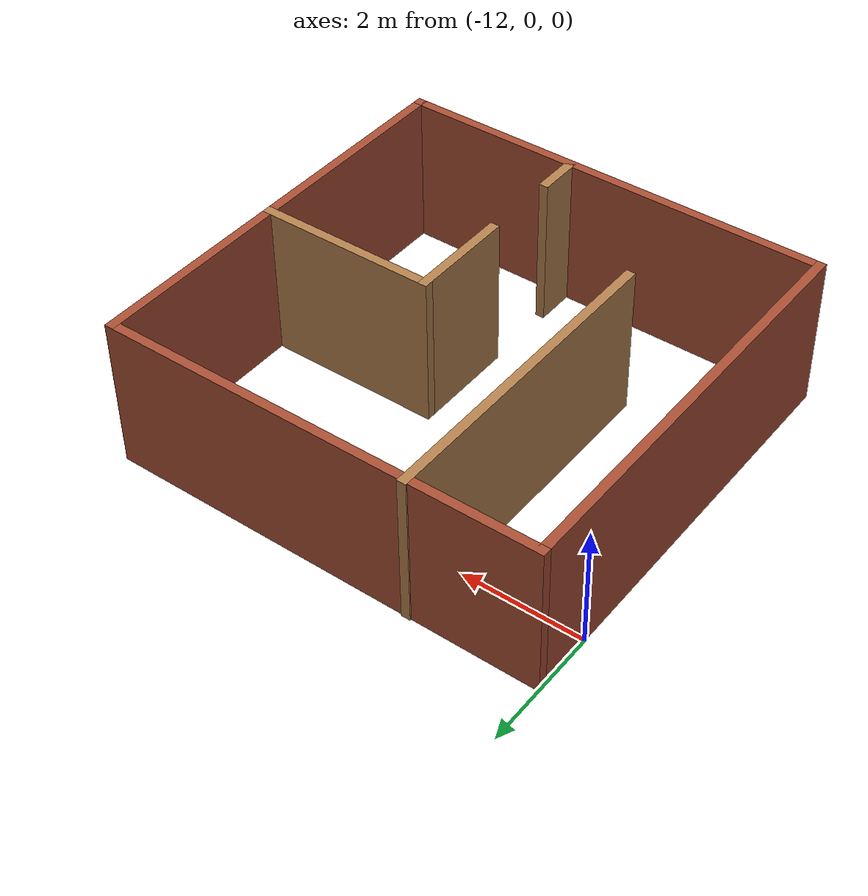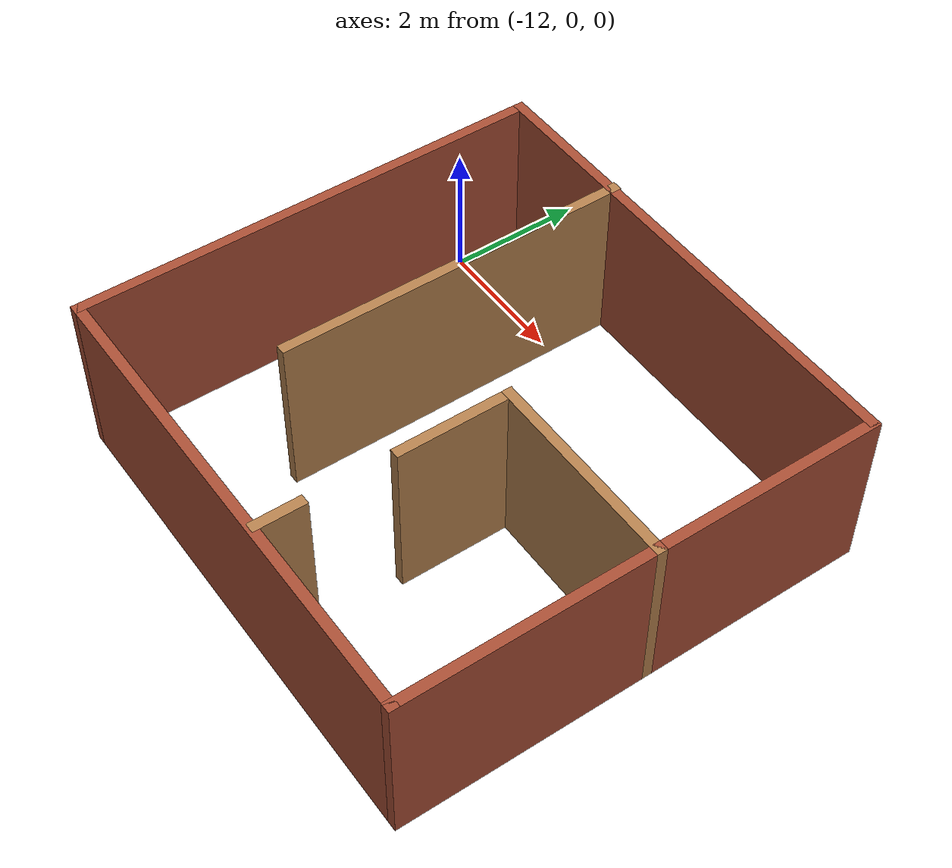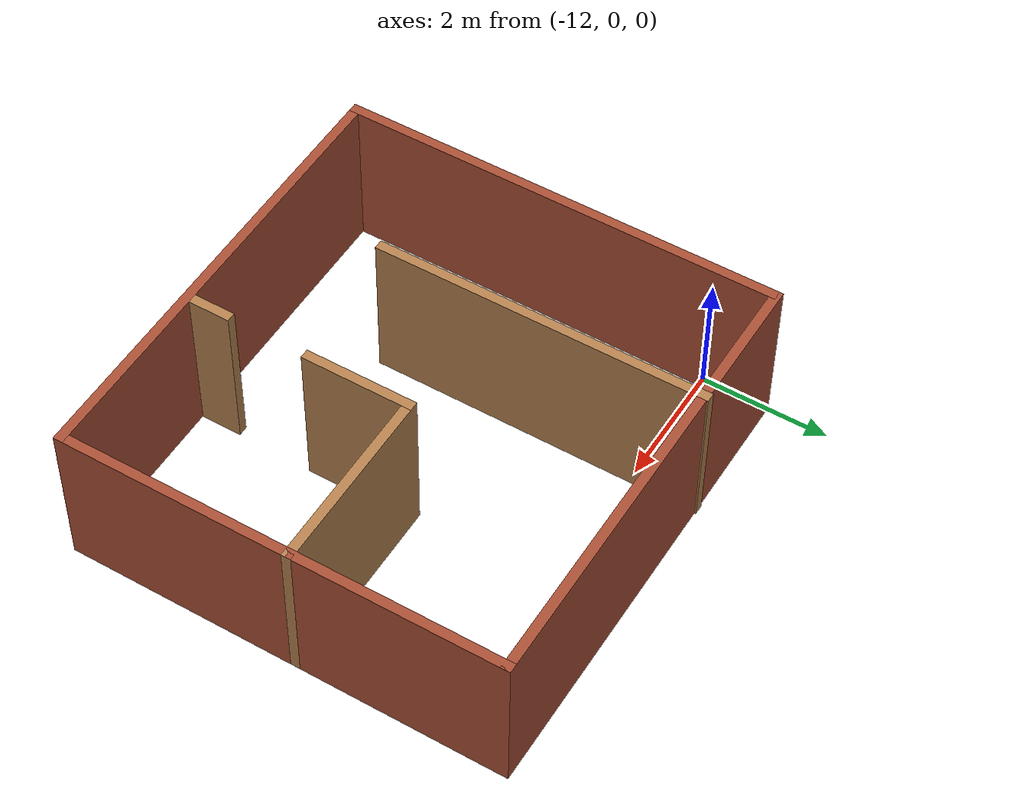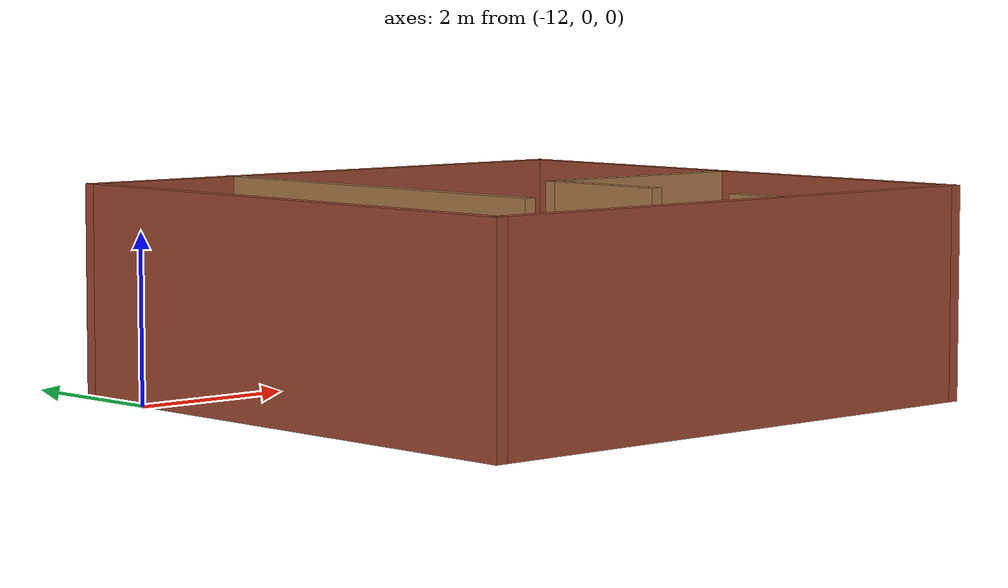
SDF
<?xml version='1.0'?>
<sdf version='1.7'>
  <model name='myBuilding'>
    <pose>-6.0054 -2.43416 0 0 -0 0</pose>
    <link name='Wall_1'>
      <collision name='Wall_1_Collision'>
        <geometry>
          <box>
            <size>7 0.15 2.5</size>
          </box>
        </geometry>
        <pose>0 0 1.25 0 -0 0</pose>
      </collision>
      <visual name='Wall_1_Visual'>
        <pose>0 0 1.25 0 -0 0</pose>
        <geometry>
          <box>
            <size>7 0.15 2.5</size>
          </box>
        </geometry>
        <material>
          <script>
            <uri>file://media/materials/scripts/gazebo.material</uri>
            <name>Gazebo/Bricks</name>
          </script>
          <ambient>1 1 1 1</ambient>
        </material>
        <meta>
          <layer>0</layer>
        </meta>
      </visual>
      <pose>-5.9304 -0.011565 0 0 -0 -1.5708</pose>
    </link>
    <link name='Wall_10'>
      <collision name='Wall_10_Collision'>
        <geometry>
          <box>
            <size>3.4 0.15 2.5</size>
          </box>
        </geometry>
        <pose>0 0 1.25 0 -0 0</pose>
      </collision>
      <visual name='Wall_10_Visual'>
        <pose>0 0 1.25 0 -0 0</pose>
        <geometry>
          <box>
            <size>3.4 0.15 2.5</size>
          </box>
        </geometry>
        <material>
          <script>
            <uri>file://media/materials/scripts/gazebo.material</uri>
            <name>Gazebo/Bricks</name>
          </script>
          <ambient>0.996078 0.47451 0.0196078 1</ambient>
        </material>
        <meta>
          <layer>0</layer>
        </meta>
      </visual>
      <pose>1.1696 1.78843 0 0 -0 -1.5708</pose>
    </link>
    <link name='Wall_12'>
      <collision name='Wall_12_Collision'>
        <geometry>
          <box>
            <size>5.25 0.15 2.5</size>
          </box>
        </geometry>
        <pose>0 0 1.25 0 -0 0</pose>
      </collision>
      <visual name='Wall_12_Visual'>
        <pose>0 0 1.25 0 -0 0</pose>
        <geometry>
          <box>
            <size>5.25 0.15 2.5</size>
          </box>
        </geometry>
        <material>
          <script>
            <uri>file://media/materials/scripts/gazebo.material</uri>
            <name>Gazebo/Wood</name>
          </script>
          <ambient>1 1 1 1</ambient>
        </material>
        <meta>
          <layer>0</layer>
        </meta>
      </visual>
      <pose>-3.87177 0.886565 0 0 -0 -1.5708</pose>
    </link>
    <link name='Wall_2'>
      <collision name='Wall_2_Collision'>
        <geometry>
          <box>
            <size>7.25 0.15 2.5</size>
          </box>
        </geometry>
        <pose>0 0 1.25 0 -0 0</pose>
      </collision>
      <visual name='Wall_2_Visual'>
        <pose>0 0 1.25 0 -0 0</pose>
        <geometry>
          <box>
            <size>7.25 0.15 2.5</size>
          </box>
        </geometry>
        <material>
          <script>
            <uri>file://media/materials/scripts/gazebo.material</uri>
            <name>Gazebo/Bricks</name>
          </script>
          <ambient>1 1 1 1</ambient>
        </material>
        <meta>
          <layer>0</layer>
        </meta>
      </visual>
      <pose>-2.3804 -3.43656 0 0 -0 0</pose>
    </link>
    <link name='Wall_3'>
      <collision name='Wall_3_Collision'>
        <geometry>
          <box>
            <size>3.75 0.15 2.5</size>
          </box>
        </geometry>
        <pose>0 0 1.25 0 -0 0</pose>
      </collision>
      <visual name='Wall_3_Visual'>
        <pose>0 0 1.25 0 -0 0</pose>
        <geometry>
          <box>
            <size>3.75 0.15 2.5</size>
          </box>
        </geometry>
        <material>
          <script>
            <uri>file://media/materials/scripts/gazebo.material</uri>
            <name>Gazebo/Bricks</name>
          </script>
          <ambient>1 1 1 1</ambient>
        </material>
        <meta>
          <layer>0</layer>
        </meta>
      </visual>
      <pose>1.1696 -1.63657 0 0 -0 1.5708</pose>
    </link>
    <link name='Wall_4'>
      <collision name='Wall_4_Collision'>
        <geometry>
          <box>
            <size>3 0.15 2.5</size>
          </box>
        </geometry>
        <pose>0 0 1.25 0 -0 0</pose>
      </collision>
      <visual name='Wall_4_Visual'>
        <pose>0 0 1.25 0 -0 0</pose>
        <geometry>
          <box>
            <size>3 0.15 2.5</size>
          </box>
        </geometry>
        <material>
          <script>
            <uri>file://media/materials/scripts/gazebo.material</uri>
            <name>Gazebo/Wood</name>
          </script>
          <ambient>0.996078 0.47451 0.0196078 1</ambient>
        </material>
        <meta>
          <layer>0</layer>
        </meta>
      </visual>
      <pose>-0.255399 0.163435 0 0 -0 3.14159</pose>
    </link>
    <link name='Wall_5'>
      <collision name='Wall_5_Collision'>
        <geometry>
          <box>
            <size>1.75 0.15 2.5</size>
          </box>
        </geometry>
        <pose>0 0 1.25 0 -0 0</pose>
      </collision>
      <visual name='Wall_5_Visual'>
        <pose>0 0 1.25 0 -0 0</pose>
        <geometry>
          <box>
            <size>1.75 0.15 2.5</size>
          </box>
        </geometry>
        <material>
          <script>
            <uri>file://media/materials/scripts/gazebo.material</uri>
            <name>Gazebo/Wood</name>
          </script>
          <ambient>1 1 1 1</ambient>
        </material>
        <meta>
          <layer>0</layer>
        </meta>
      </visual>
      <pose>-1.6804 -0.636565 0 0 -0 -1.5708</pose>
    </link>
    <link name='Wall_7'>
      <collision name='Wall_7_Collision'>
        <geometry>
          <box>
            <size>0.75 0.15 2.5</size>
          </box>
        </geometry>
        <pose>0 0 1.25 0 -0 0</pose>
      </collision>
      <visual name='Wall_7_Visual'>
        <pose>0 0 1.25 0 -0 0</pose>
        <geometry>
          <box>
            <size>0.75 0.15 2.5</size>
          </box>
        </geometry>
        <material>
          <script>
            <uri>file://media/materials/scripts/gazebo.material</uri>
            <name>Gazebo/Wood</name>
          </script>
          <ambient>1 1 1 1</ambient>
        </material>
        <meta>
          <layer>0</layer>
        </meta>
      </visual>
      <pose>-1.6975 -3.08696 0 0 -0 1.5708</pose>
    </link>
    <link name='Wall_9'>
      <collision name='Wall_9_Collision'>
        <geometry>
          <box>
            <size>7.25 0.15 2.5</size>
          </box>
        </geometry>
        <pose>0 0 1.25 0 -0 0</pose>
      </collision>
      <visual name='Wall_9_Visual'>
        <pose>0 0 1.25 0 -0 0</pose>
        <geometry>
          <box>
            <size>7.25 0.15 2.5</size>
          </box>
        </geometry>
        <material>
          <script>
            <uri>file://media/materials/scripts/gazebo.material</uri>
            <name>Gazebo/Bricks</name>
          </script>
          <ambient>0.996078 0.47451 0.0196078 1</ambient>
        </material>
        <meta>
          <layer>0</layer>
        </meta>
      </visual>
      <pose>-2.3804 3.41344 0 0 -0 0</pose>
    </link>
    <static>1</static>
  </model>
</sdf>
